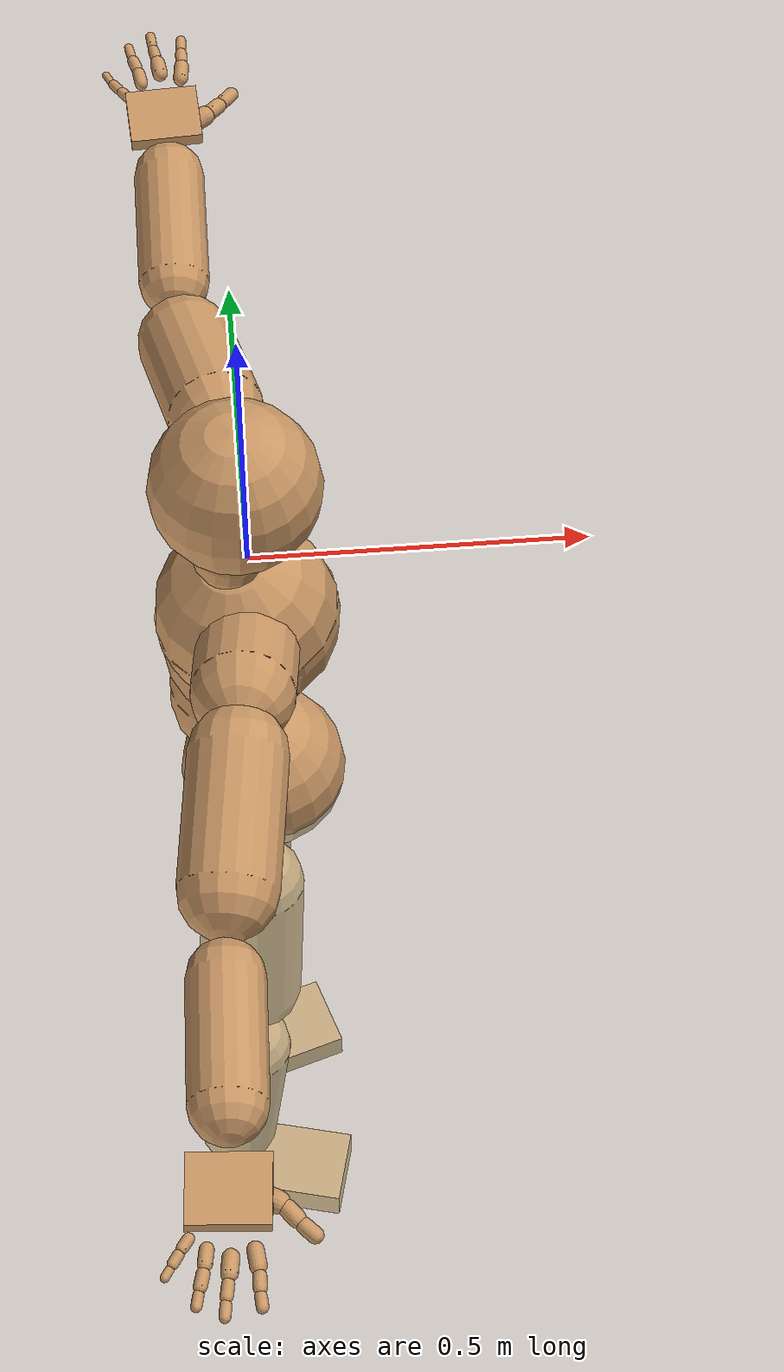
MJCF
<mujoco model="humanoid">
  <compiler coordinate="local" angle="radian"/>
  <default>
    <joint damping="0.0" armature="0.01" stiffness="0.0" limited="true"/>
    <geom conaffinity="1" condim="3" contype="7" margin="0.001" rgba="0.8 0.6 .4 1"/>
  </default>
  <asset>
    <texture type="skybox" builtin="gradient" rgb1=".4 .5 .6" rgb2="0 0 0" width="100" height="100"/>
    <texture builtin="flat" height="1278" mark="cross" markrgb="1 1 1" name="texgeom" random="0.01" rgb1="0.8 0.6 0.4" rgb2="0.8 0.6 0.4" type="cube" width="127"/>
    <texture builtin="checker" height="100" name="texplane" rgb1="0 0 0" rgb2="0.8 0.8 0.8" type="2d" width="100"/>
    <material name="MatPlane" reflectance="0.5" shininess="1" specular="1" texrepeat="60 60" texture="texplane"/>
    <material name="geom" texture="texgeom" texuniform="true"/>
  </asset>
  <worldbody>
    <light cutoff="100" diffuse="1 1 1" dir="-0 0 -1.3" directional="true" exponent="1" pos="0 0 1.3" specular=".1 .1 .1"/>
    <geom conaffinity="1" condim="3" name="floor" pos="0 0 0" rgba="0.8 0.9 0.8 1" size="100 100 .2" type="plane" material="MatPlane"/>
    <body name="Pelvis" pos="0.0016 -0.3608 0.0108">
      <freejoint name="Pelvis"/>
      <geom type="sphere" contype="1" conaffinity="1" density="500" size="0.1149" pos="0.0000 0.0000 0.0000" name="Pelvis"/>
      <body name="L_Hip" pos="-0.0244 0.062 -0.0994">
        <joint name="L_Hip_x" type="hinge" pos="0 0 0" axis="1 0 0" stiffness="800" damping="80" armature="0.02" range="-180.0000 180.0000"/>
        <joint name="L_Hip_y" type="hinge" pos="0 0 0" axis="0 1 0" stiffness="800" damping="80" armature="0.02" range="-180.0000 180.0000"/>
        <joint name="L_Hip_z" type="hinge" pos="0 0 0" axis="0 0 1" stiffness="800" damping="80" armature="0.02" range="-180.0000 180.0000"/>
        <geom type="capsule" contype="1" conaffinity="1" density="500" fromto="-0.0017 0.0144 -0.0860 -0.0067 0.0574 -0.3442" size="0.0678" name="L_Hip"/>
        <body name="L_Knee" pos="-0.0084 0.0718 -0.4302">
          <joint name="L_Knee_x" type="hinge" pos="0 0 0" axis="1 0 0" stiffness="800" damping="80" armature="0.02" range="-180.0000 180.0000"/>
          <joint name="L_Knee_y" type="hinge" pos="0 0 0" axis="0 1 0" stiffness="800" damping="80" armature="0.02" range="-180.0000 180.0000"/>
          <joint name="L_Knee_z" type="hinge" pos="0 0 0" axis="0 0 1" stiffness="800" damping="80" armature="0.02" range="-180.0000 180.0000"/>
          <geom type="capsule" contype="1" conaffinity="1" density="500" fromto="-0.0097 -0.0098 -0.0941 -0.0386 -0.0392 -0.3764" size="0.0616" name="L_Knee"/>
          <body name="L_Ankle" pos="-0.0483 -0.049 -0.4705">
            <joint name="L_Ankle_x" type="hinge" pos="0 0 0" axis="1 0 0" stiffness="800" damping="80" armature="0.02" range="-180.0000 180.0000"/>
            <joint name="L_Ankle_y" type="hinge" pos="0 0 0" axis="0 1 0" stiffness="800" damping="80" armature="0.02" range="-180.0000 180.0000"/>
            <joint name="L_Ankle_z" type="hinge" pos="0 0 0" axis="0 0 1" stiffness="800" damping="80" armature="0.02" range="-180.0000 180.0000"/>
            <geom type="box" contype="1" conaffinity="1" density="500" pos="0.0729 0.0237 -0.0337" size="0.1028 0.0573 0.0238" quat="0.9877 0.0000 0.0000 0.1564" name="L_Ankle"/>
            <body name="L_Toe" pos="0.1458 0.0474 -0.0675">
              <joint name="L_Toe_x" type="hinge" pos="0 0 0" axis="1 0 0" stiffness="500" damping="50" armature="0.02" range="-180.0000 180.0000"/>
              <joint name="L_Toe_y" type="hinge" pos="0 0 0" axis="0 1 0" stiffness="500" damping="50" armature="0.02" range="-180.0000 180.0000"/>
              <joint name="L_Toe_z" type="hinge" pos="0 0 0" axis="0 0 1" stiffness="500" damping="50" armature="0.02" range="-180.0000 180.0000"/>
              <geom type="box" contype="1" conaffinity="1" density="500" pos="0.0000 0.0000 0.0331" size="0.0011 0.0027 0.0012" quat="0.9870 0.0000 0.0000 0.1605" name="L_Toe"/>
            </body>
          </body>
        </body>
      </body>
      <body name="R_Hip" pos="-0.0154 -0.0648 -0.1109">
        <joint name="R_Hip_x" type="hinge" pos="0 0 0" axis="1 0 0" stiffness="800" damping="80" armature="0.02" range="-180.0000 180.0000"/>
        <joint name="R_Hip_y" type="hinge" pos="0 0 0" axis="0 1 0" stiffness="800" damping="80" armature="0.02" range="-180.0000 180.0000"/>
        <joint name="R_Hip_z" type="hinge" pos="0 0 0" axis="0 0 1" stiffness="800" damping="80" armature="0.02" range="-180.0000 180.0000"/>
        <geom type="capsule" contype="1" conaffinity="1" density="500" fromto="-0.0037 -0.0106 -0.0824 -0.0146 -0.0424 -0.3294" size="0.0677" name="R_Hip"/>
        <body name="R_Knee" pos="-0.0183 -0.053 -0.4118">
          <joint name="R_Knee_x" type="hinge" pos="0 0 0" axis="1 0 0" stiffness="800" damping="80" armature="0.02" range="-180.0000 180.0000"/>
          <joint name="R_Knee_y" type="hinge" pos="0 0 0" axis="0 1 0" stiffness="800" damping="80" armature="0.02" range="-180.0000 180.0000"/>
          <joint name="R_Knee_z" type="hinge" pos="0 0 0" axis="0 0 1" stiffness="800" damping="80" armature="0.02" range="-180.0000 180.0000"/>
          <geom type="capsule" contype="1" conaffinity="1" density="500" fromto="-0.0094 0.0036 -0.0971 -0.0375 0.0142 -0.3885" size="0.0613" name="R_Knee"/>
          <body name="R_Ankle" pos="-0.0469 0.0178 -0.4856">
            <joint name="R_Ankle_x" type="hinge" pos="0 0 0" axis="1 0 0" stiffness="800" damping="80" armature="0.02" range="-180.0000 180.0000"/>
            <joint name="R_Ankle_y" type="hinge" pos="0 0 0" axis="0 1 0" stiffness="800" damping="80" armature="0.02" range="-180.0000 180.0000"/>
            <joint name="R_Ankle_z" type="hinge" pos="0 0 0" axis="0 0 1" stiffness="800" damping="80" armature="0.02" range="-180.0000 180.0000"/>
            <geom type="box" contype="1" conaffinity="1" density="500" pos="0.0765 -0.0189 -0.0328" size="0.1028 0.0573 0.0284" quat="0.9927 0.0000 0.0000 -0.1210" name="R_Ankle"/>
            <body name="R_Toe" pos="0.153 -0.0379 -0.0655">
              <joint name="R_Toe_x" type="hinge" pos="0 0 0" axis="1 0 0" stiffness="500" damping="50" armature="0.02" range="-180.0000 180.0000"/>
              <joint name="R_Toe_y" type="hinge" pos="0 0 0" axis="0 1 0" stiffness="500" damping="50" armature="0.02" range="-180.0000 180.0000"/>
              <joint name="R_Toe_z" type="hinge" pos="0 0 0" axis="0 0 1" stiffness="500" damping="50" armature="0.02" range="-180.0000 180.0000"/>
              <geom type="box" contype="1" conaffinity="1" density="500" pos="0.0000 0.0000 0.0275" size="0.0011 0.0027 0.0012" quat="0.9935 0.0000 0.0000 -0.1134" name="R_Toe"/>
            </body>
          </body>
        </body>
      </body>
      <body name="Torso" pos="-0.0415 -0.0013 0.1161">
        <joint name="Torso_x" type="hinge" pos="0 0 0" axis="1 0 0" stiffness="1000" damping="100" armature="0.02" range="-180.0000 180.0000"/>
        <joint name="Torso_y" type="hinge" pos="0 0 0" axis="0 1 0" stiffness="1000" damping="100" armature="0.02" range="-180.0000 180.0000"/>
        <joint name="Torso_z" type="hinge" pos="0 0 0" axis="0 0 1" stiffness="1000" damping="100" armature="0.02" range="-180.0000 180.0000"/>
        <geom type="capsule" contype="1" conaffinity="1" density="500" fromto="0.0032 0.0081 0.0922 0.0021 0.0054 0.0615" size="0.0824" name="Torso"/>
        <body name="Spine" pos="0.0053 0.0134 0.1536">
          <joint name="Spine_x" type="hinge" pos="0 0 0" axis="1 0 0" stiffness="1000" damping="100" armature="0.02" range="-180.0000 180.0000"/>
          <joint name="Spine_y" type="hinge" pos="0 0 0" axis="0 1 0" stiffness="1000" damping="100" armature="0.02" range="-180.0000 180.0000"/>
          <joint name="Spine_z" type="hinge" pos="0 0 0" axis="0 0 1" stiffness="1000" damping="100" armature="0.02" range="-180.0000 180.0000"/>
          <geom type="capsule" contype="1" conaffinity="1" density="500" fromto="0.0191 -0.0068 0.0366 0.0127 -0.0045 0.0244" size="0.1025" name="Spine"/>
          <body name="Chest" pos="0.0318 -0.0114 0.061">
            <joint name="Chest_x" type="hinge" pos="0 0 0" axis="1 0 0" stiffness="1000" damping="100" armature="0.02" range="-180.0000 180.0000"/>
            <joint name="Chest_y" type="hinge" pos="0 0 0" axis="0 1 0" stiffness="1000" damping="100" armature="0.02" range="-180.0000 180.0000"/>
            <joint name="Chest_z" type="hinge" pos="0 0 0" axis="0 0 1" stiffness="1000" damping="100" armature="0.02" range="-180.0000 180.0000"/>
            <geom type="capsule" contype="1" conaffinity="1" density="500" fromto="-0.0079 -0.0038 0.0656 -0.0053 -0.0025 0.0438" size="0.122" name="Chest"/>
            <body name="Neck" pos="-0.0305 -0.0127 0.169">
              <joint name="Neck_x" type="hinge" pos="0 0 0" axis="1 0 0" stiffness="500" damping="50" armature="0.02" range="-180.0000 180.0000"/>
              <joint name="Neck_y" type="hinge" pos="0 0 0" axis="0 1 0" stiffness="500" damping="50" armature="0.02" range="-180.0000 180.0000"/>
              <joint name="Neck_z" type="hinge" pos="0 0 0" axis="0 0 1" stiffness="500" damping="50" armature="0.02" range="-180.0000 180.0000"/>
              <geom type="capsule" contype="1" conaffinity="1" density="500" fromto="0.0035 0.0055 0.0282 0.0141 0.0219 0.1129" size="0.0475" name="Neck"/>
              <body name="Head" pos="0.0176 0.0274 0.1412">
                <joint name="Head_x" type="hinge" pos="0 0 0" axis="1 0 0" stiffness="500" damping="50" armature="0.02" range="-180.0000 180.0000"/>
                <joint name="Head_y" type="hinge" pos="0 0 0" axis="0 1 0" stiffness="500" damping="50" armature="0.02" range="-180.0000 180.0000"/>
                <joint name="Head_z" type="hinge" pos="0 0 0" axis="0 0 1" stiffness="500" damping="50" armature="0.02" range="-180.0000 180.0000"/>
                <geom type="sphere" contype="1" conaffinity="1" density="500" size="0.1120" pos="0.0000 0.0000 0.0000" name="Head"/>
              </body>
            </body>
            <body name="L_Thorax" pos="-0.0029 0.0489 0.0793">
              <joint name="L_Thorax_x" type="hinge" pos="0 0 0" axis="1 0 0" stiffness="500" damping="50" armature="0.02" range="-180.0000 180.0000"/>
              <joint name="L_Thorax_y" type="hinge" pos="0 0 0" axis="0 1 0" stiffness="500" damping="50" armature="0.02" range="-180.0000 180.0000"/>
              <joint name="L_Thorax_z" type="hinge" pos="0 0 0" axis="0 0 1" stiffness="500" damping="50" armature="0.02" range="-180.0000 180.0000"/>
              <geom type="capsule" contype="1" conaffinity="1" density="500" fromto="-0.0032 0.0337 0.0127 -0.0129 0.1346 0.0510" size="0.0583" name="L_Thorax"/>
              <body name="L_Shoulder" pos="-0.0161 0.1683 0.0637">
                <joint name="L_Shoulder_x" type="hinge" pos="0 0 0" axis="1 0 0" stiffness="500" damping="50" armature="0.02" range="-180.0000 180.0000"/>
                <joint name="L_Shoulder_y" type="hinge" pos="0 0 0" axis="0 1 0" stiffness="500" damping="50" armature="0.02" range="-180.0000 180.0000"/>
                <joint name="L_Shoulder_z" type="hinge" pos="0 0 0" axis="0 0 1" stiffness="500" damping="50" armature="0.02" range="-180.0000 180.0000"/>
                <geom type="capsule" contype="1" conaffinity="1" density="500" fromto="-0.0115 0.0550 -0.0173 -0.0462 0.2199 -0.0692" size="0.0661" name="L_Shoulder"/>
                <body name="L_Elbow" pos="-0.0577 0.2749 -0.0865">
                  <joint name="L_Elbow_x" type="hinge" pos="0 0 0" axis="1 0 0" stiffness="500" damping="50" armature="0.02" range="-720.0000 720.0000"/>
                  <joint name="L_Elbow_y" type="hinge" pos="0 0 0" axis="0 1 0" stiffness="500" damping="50" armature="0.02" range="-720.0000 720.0000"/>
                  <joint name="L_Elbow_z" type="hinge" pos="0 0 0" axis="0 0 1" stiffness="500" damping="50" armature="0.02" range="-720.0000 720.0000"/>
                  <geom type="capsule" contype="1" conaffinity="1" density="500" fromto="0.0007 0.0592 0.0066 0.0026 0.2367 0.0266" size="0.0491" name="L_Elbow"/>
                  <body name="L_Wrist" pos="0.0033 0.2959 0.0332">
                    <joint name="L_Wrist_x" type="hinge" pos="0 0 0" axis="1 0 0" stiffness="300" damping="30" armature="0.02" range="-180.0000 180.0000"/>
                    <joint name="L_Wrist_y" type="hinge" pos="0 0 0" axis="0 1 0" stiffness="300" damping="30" armature="0.02" range="-180.0000 180.0000"/>
                    <joint name="L_Wrist_z" type="hinge" pos="0 0 0" axis="0 0 1" stiffness="300" damping="30" armature="0.02" range="-180.0000 180.0000"/>
                    <geom type="box" contype="1" conaffinity="1" density="500" pos="-0.0030 0.0508 -0.0061" size="0.047 0.0506 0.0092" quat="0.7279 0.0000 0.0000 -0.6857" name="L_Wrist"/>
                    <body name="L_Index1" pos="0.0236 0.1189 -0.0088">
                      <joint name="L_Index1_x" type="hinge" pos="0 0 0" axis="1 0 0" stiffness="100" damping="10" armature="0.02" range="-180.0000 180.0000"/>
                      <joint name="L_Index1_y" type="hinge" pos="0 0 0" axis="0 1 0" stiffness="100" damping="10" armature="0.02" range="-180.0000 180.0000"/>
                      <joint name="L_Index1_z" type="hinge" pos="0 0 0" axis="0 0 1" stiffness="100" damping="10" armature="0.02" range="-180.0000 180.0000"/>
                      <geom type="capsule" contype="1" conaffinity="1" density="500" fromto="0.0008 0.0071 0.0004 0.0030 0.0284 0.0017" size="0.0105" name="L_Index1"/>
                      <body name="L_Index2" pos="0.0038 0.0355 0.0021">
                        <joint name="L_Index2_x" type="hinge" pos="0 0 0" axis="1 0 0" stiffness="100" damping="10" armature="0.02" range="-180.0000 180.0000"/>
                        <joint name="L_Index2_y" type="hinge" pos="0 0 0" axis="0 1 0" stiffness="100" damping="10" armature="0.02" range="-180.0000 180.0000"/>
                        <joint name="L_Index2_z" type="hinge" pos="0 0 0" axis="0 0 1" stiffness="100" damping="10" armature="0.02" range="-180.0000 180.0000"/>
                        <geom type="capsule" contype="1" conaffinity="1" density="500" fromto="-0.0001 0.0050 -0.0006 -0.0003 0.0200 -0.0023" size="0.0085" name="L_Index2"/>
                        <body name="L_Index3" pos="-0.0004 0.025 -0.0029">
                          <joint name="L_Index3_x" type="hinge" pos="0 0 0" axis="1 0 0" stiffness="100" damping="10" armature="0.02" range="-180.0000 180.0000"/>
                          <joint name="L_Index3_y" type="hinge" pos="0 0 0" axis="0 1 0" stiffness="100" damping="10" armature="0.02" range="-180.0000 180.0000"/>
                          <joint name="L_Index3_z" type="hinge" pos="0 0 0" axis="0 0 1" stiffness="100" damping="10" armature="0.02" range="-180.0000 180.0000"/>
                          <geom type="capsule" contype="1" conaffinity="1" density="500" fromto="0.0003 0.0054 -0.0002 0.0013 0.0216 -0.0007" size="0.0073" name="L_Index3"/>
                        </body>
                      </body>
                    </body>
                    <body name="L_Middle1" pos="-0.0037 0.1278 -0.0056">
                      <joint name="L_Middle1_x" type="hinge" pos="0 0 0" axis="1 0 0" stiffness="100" damping="10" armature="0.02" range="-180.0000 180.0000"/>
                      <joint name="L_Middle1_y" type="hinge" pos="0 0 0" axis="0 1 0" stiffness="100" damping="10" armature="0.02" range="-180.0000 180.0000"/>
                      <joint name="L_Middle1_z" type="hinge" pos="0 0 0" axis="0 0 1" stiffness="100" damping="10" armature="0.02" range="-180.0000 180.0000"/>
                      <geom type="capsule" contype="1" conaffinity="1" density="500" fromto="-0.0010 0.0068 0.0001 -0.0038 0.0273 0.0006" size="0.0107" name="L_Middle1"/>
                      <body name="L_Middle2" pos="-0.0048 0.0341 0.0007">
                        <joint name="L_Middle2_x" type="hinge" pos="0 0 0" axis="1 0 0" stiffness="100" damping="10" armature="0.02" range="-180.0000 180.0000"/>
                        <joint name="L_Middle2_y" type="hinge" pos="0 0 0" axis="0 1 0" stiffness="100" damping="10" armature="0.02" range="-180.0000 180.0000"/>
                        <joint name="L_Middle2_z" type="hinge" pos="0 0 0" axis="0 0 1" stiffness="100" damping="10" armature="0.02" range="-180.0000 180.0000"/>
                        <geom type="capsule" contype="1" conaffinity="1" density="500" fromto="-0.0010 0.0052 -0.0006 -0.0038 0.0209 -0.0023" size="0.0079" name="L_Middle2"/>
                        <body name="L_Middle3" pos="-0.0048 0.0261 -0.0029">
                          <joint name="L_Middle3_x" type="hinge" pos="0 0 0" axis="1 0 0" stiffness="100" damping="10" armature="0.02" range="-180.0000 180.0000"/>
                          <joint name="L_Middle3_y" type="hinge" pos="0 0 0" axis="0 1 0" stiffness="100" damping="10" armature="0.02" range="-180.0000 180.0000"/>
                          <joint name="L_Middle3_z" type="hinge" pos="0 0 0" axis="0 0 1" stiffness="100" damping="10" armature="0.02" range="-180.0000 180.0000"/>
                          <geom type="capsule" contype="1" conaffinity="1" density="500" fromto="-0.0006 0.0056 -0.0002 -0.0022 0.0225 -0.0007" size="0.007" name="L_Middle3"/>
                        </body>
                      </body>
                    </body>
                    <body name="L_Pinky1" pos="-0.0505 0.0992 -0.0157">
                      <joint name="L_Pinky1_x" type="hinge" pos="0 0 0" axis="1 0 0" stiffness="100" damping="10" armature="0.02" range="-180.0000 180.0000"/>
                      <joint name="L_Pinky1_y" type="hinge" pos="0 0 0" axis="0 1 0" stiffness="100" damping="10" armature="0.02" range="-180.0000 180.0000"/>
                      <joint name="L_Pinky1_z" type="hinge" pos="0 0 0" axis="0 0 1" stiffness="100" damping="10" armature="0.02" range="-180.0000 180.0000"/>
                      <geom type="capsule" contype="1" conaffinity="1" density="500" fromto="-0.0026 0.0037 -0.0004 -0.0103 0.0146 -0.0015" size="0.0076" name="L_Pinky1"/>
                      <body name="L_Pinky2" pos="-0.0128 0.0183 -0.0019">
                        <joint name="L_Pinky2_x" type="hinge" pos="0 0 0" axis="1 0 0" stiffness="100" damping="10" armature="0.02" range="-180.0000 180.0000"/>
                        <joint name="L_Pinky2_y" type="hinge" pos="0 0 0" axis="0 1 0" stiffness="100" damping="10" armature="0.02" range="-180.0000 180.0000"/>
                        <joint name="L_Pinky2_z" type="hinge" pos="0 0 0" axis="0 0 1" stiffness="100" damping="10" armature="0.02" range="-180.0000 180.0000"/>
                        <geom type="capsule" contype="1" conaffinity="1" density="500" fromto="-0.0024 0.0036 -0.0005 -0.0095 0.0142 -0.0019" size="0.0072" name="L_Pinky2"/>
                        <body name="L_Pinky3" pos="-0.0118 0.0178 -0.0024">
                          <joint name="L_Pinky3_x" type="hinge" pos="0 0 0" axis="1 0 0" stiffness="100" damping="10" armature="0.02" range="-180.0000 180.0000"/>
                          <joint name="L_Pinky3_y" type="hinge" pos="0 0 0" axis="0 1 0" stiffness="100" damping="10" armature="0.02" range="-180.0000 180.0000"/>
                          <joint name="L_Pinky3_z" type="hinge" pos="0 0 0" axis="0 0 1" stiffness="100" damping="10" armature="0.02" range="-180.0000 180.0000"/>
                          <geom type="capsule" contype="1" conaffinity="1" density="500" fromto="-0.0020 0.0040 -0.0001 -0.0079 0.0158 -0.0003" size="0.0054" name="L_Pinky3"/>
                        </body>
                      </body>
                    </body>
                    <body name="L_Ring1" pos="-0.0312 0.1145 -0.0092">
                      <joint name="L_Ring1_x" type="hinge" pos="0 0 0" axis="1 0 0" stiffness="100" damping="10" armature="0.02" range="-180.0000 180.0000"/>
                      <joint name="L_Ring1_y" type="hinge" pos="0 0 0" axis="0 1 0" stiffness="100" damping="10" armature="0.02" range="-180.0000 180.0000"/>
                      <joint name="L_Ring1_z" type="hinge" pos="0 0 0" axis="0 0 1" stiffness="100" damping="10" armature="0.02" range="-180.0000 180.0000"/>
                      <geom type="capsule" contype="1" conaffinity="1" density="500" fromto="-0.0011 0.0064 0.0001 -0.0043 0.0254 0.0006" size="0.0091" name="L_Ring1"/>
                      <body name="L_Ring2" pos="-0.0053 0.0318 0.0007">
                        <joint name="L_Ring2_x" type="hinge" pos="0 0 0" axis="1 0 0" stiffness="100" damping="10" armature="0.02" range="-180.0000 180.0000"/>
                        <joint name="L_Ring2_y" type="hinge" pos="0 0 0" axis="0 1 0" stiffness="100" damping="10" armature="0.02" range="-180.0000 180.0000"/>
                        <joint name="L_Ring2_z" type="hinge" pos="0 0 0" axis="0 0 1" stiffness="100" damping="10" armature="0.02" range="-180.0000 180.0000"/>
                        <geom type="capsule" contype="1" conaffinity="1" density="500" fromto="-0.0015 0.0051 -0.0005 -0.0058 0.0204 -0.0021" size="0.0084" name="L_Ring2"/>
                        <body name="L_Ring3" pos="-0.0073 0.0255 -0.0026">
                          <joint name="L_Ring3_x" type="hinge" pos="0 0 0" axis="1 0 0" stiffness="100" damping="10" armature="0.02" range="-180.0000 180.0000"/>
                          <joint name="L_Ring3_y" type="hinge" pos="0 0 0" axis="0 1 0" stiffness="100" damping="10" armature="0.02" range="-180.0000 180.0000"/>
                          <joint name="L_Ring3_z" type="hinge" pos="0 0 0" axis="0 0 1" stiffness="100" damping="10" armature="0.02" range="-180.0000 180.0000"/>
                          <geom type="capsule" contype="1" conaffinity="1" density="500" fromto="-0.0011 0.0055 -0.0001 -0.0042 0.0220 -0.0005" size="0.0065" name="L_Ring3"/>
                        </body>
                      </body>
                    </body>
                    <body name="L_Thumb1" pos="0.0314 0.0474 -0.0221">
                      <joint name="L_Thumb1_x" type="hinge" pos="0 0 0" axis="1 0 0" stiffness="100" damping="10" armature="0.02" range="-180.0000 180.0000"/>
                      <joint name="L_Thumb1_y" type="hinge" pos="0 0 0" axis="0 1 0" stiffness="100" damping="10" armature="0.02" range="-180.0000 180.0000"/>
                      <joint name="L_Thumb1_z" type="hinge" pos="0 0 0" axis="0 0 1" stiffness="100" damping="10" armature="0.02" range="-180.0000 180.0000"/>
                      <geom type="capsule" contype="1" conaffinity="1" density="500" fromto="0.0060 0.0037 0.0005 0.0238 0.0148 0.0019" size="0.0144" name="L_Thumb1"/>
                      <body name="L_Thumb2" pos="0.0298 0.0185 0.0024">
                        <joint name="L_Thumb2_x" type="hinge" pos="0 0 0" axis="1 0 0" stiffness="100" damping="10" armature="0.02" range="-180.0000 180.0000"/>
                        <joint name="L_Thumb2_y" type="hinge" pos="0 0 0" axis="0 1 0" stiffness="100" damping="10" armature="0.02" range="-180.0000 180.0000"/>
                        <joint name="L_Thumb2_z" type="hinge" pos="0 0 0" axis="0 0 1" stiffness="100" damping="10" armature="0.02" range="-180.0000 180.0000"/>
                        <geom type="capsule" contype="1" conaffinity="1" density="500" fromto="0.0037 0.0044 -0.0011 0.0147 0.0177 -0.0045" size="0.0113" name="L_Thumb2"/>
                        <body name="L_Thumb3" pos="0.0183 0.0221 -0.0056">
                          <joint name="L_Thumb3_x" type="hinge" pos="0 0 0" axis="1 0 0" stiffness="100" damping="10" armature="0.02" range="-180.0000 180.0000"/>
                          <joint name="L_Thumb3_y" type="hinge" pos="0 0 0" axis="0 1 0" stiffness="100" damping="10" armature="0.02" range="-180.0000 180.0000"/>
                          <joint name="L_Thumb3_z" type="hinge" pos="0 0 0" axis="0 0 1" stiffness="100" damping="10" armature="0.02" range="-180.0000 180.0000"/>
                          <geom type="capsule" contype="1" conaffinity="1" density="500" fromto="0.0041 0.0048 -0.0007 0.0163 0.0193 -0.0029" size="0.0102" name="L_Thumb3"/>
                        </body>
                      </body>
                    </body>
                  </body>
                </body>
              </body>
            </body>
            <body name="R_Thorax" pos="-0.0063 -0.0553 0.0799">
              <joint name="R_Thorax_x" type="hinge" pos="0 0 0" axis="1 0 0" stiffness="500" damping="50" armature="0.02" range="-180.0000 180.0000"/>
              <joint name="R_Thorax_y" type="hinge" pos="0 0 0" axis="0 1 0" stiffness="500" damping="50" armature="0.02" range="-180.0000 180.0000"/>
              <joint name="R_Thorax_z" type="hinge" pos="0 0 0" axis="0 0 1" stiffness="500" damping="50" armature="0.02" range="-180.0000 180.0000"/>
              <geom type="capsule" contype="1" conaffinity="1" density="500" fromto="-0.0034 -0.0310 0.0123 -0.0135 -0.1240 0.0494" size="0.0682" name="R_Thorax"/>
              <body name="R_Shoulder" pos="-0.0169 -0.155 0.0617">
                <joint name="R_Shoulder_x" type="hinge" pos="0 0 0" axis="1 0 0" stiffness="500" damping="50" armature="0.02" range="-180.0000 180.0000"/>
                <joint name="R_Shoulder_y" type="hinge" pos="0 0 0" axis="0 1 0" stiffness="500" damping="50" armature="0.02" range="-180.0000 180.0000"/>
                <joint name="R_Shoulder_z" type="hinge" pos="0 0 0" axis="0 0 1" stiffness="500" damping="50" armature="0.02" range="-180.0000 180.0000"/>
                <geom type="capsule" contype="1" conaffinity="1" density="500" fromto="-0.0078 -0.0592 -0.0100 -0.0311 -0.2366 -0.0400" size="0.0653" name="R_Shoulder"/>
                <body name="R_Elbow" pos="-0.0389 -0.2958 -0.05">
                  <joint name="R_Elbow_x" type="hinge" pos="0 0 0" axis="1 0 0" stiffness="500" damping="50" armature="0.02" range="-720.0000 720.0000"/>
                  <joint name="R_Elbow_y" type="hinge" pos="0 0 0" axis="0 1 0" stiffness="500" damping="50" armature="0.02" range="-720.0000 720.0000"/>
                  <joint name="R_Elbow_z" type="hinge" pos="0 0 0" axis="0 0 1" stiffness="500" damping="50" armature="0.02" range="-720.0000 720.0000"/>
                  <geom type="capsule" contype="1" conaffinity="1" density="500" fromto="-0.0021 -0.0575 0.0005 -0.0084 -0.2298 0.0018" size="0.0503" name="R_Elbow"/>
                  <body name="R_Wrist" pos="-0.0105 -0.2873 0.0023">
                    <joint name="R_Wrist_x" type="hinge" pos="0 0 0" axis="1 0 0" stiffness="300" damping="30" armature="0.02" range="-180.0000 180.0000"/>
                    <joint name="R_Wrist_y" type="hinge" pos="0 0 0" axis="0 1 0" stiffness="300" damping="30" armature="0.02" range="-180.0000 180.0000"/>
                    <joint name="R_Wrist_z" type="hinge" pos="0 0 0" axis="0 0 1" stiffness="300" damping="30" armature="0.02" range="-180.0000 180.0000"/>
                    <geom type="box" contype="1" conaffinity="1" density="500" pos="-0.0035 -0.0504 -0.0081" size="0.047 0.0521 0.0094" quat="0.7312 0.0000 0.0000 0.6822" name="R_Wrist"/>
                    <body name="R_Index1" pos="0.0227 -0.1181 -0.0128">
                      <joint name="R_Index1_x" type="hinge" pos="0 0 0" axis="1 0 0" stiffness="100" damping="10" armature="0.02" range="-180.0000 180.0000"/>
                      <joint name="R_Index1_y" type="hinge" pos="0 0 0" axis="0 1 0" stiffness="100" damping="10" armature="0.02" range="-180.0000 180.0000"/>
                      <joint name="R_Index1_z" type="hinge" pos="0 0 0" axis="0 0 1" stiffness="100" damping="10" armature="0.02" range="-180.0000 180.0000"/>
                      <geom type="capsule" contype="1" conaffinity="1" density="500" fromto="0.0008 -0.0071 0.0004 0.0030 -0.0284 0.0017" size="0.0106" name="R_Index1"/>
                      <body name="R_Index2" pos="0.0038 -0.0355 0.0021">
                        <joint name="R_Index2_x" type="hinge" pos="0 0 0" axis="1 0 0" stiffness="100" damping="10" armature="0.02" range="-180.0000 180.0000"/>
                        <joint name="R_Index2_y" type="hinge" pos="0 0 0" axis="0 1 0" stiffness="100" damping="10" armature="0.02" range="-180.0000 180.0000"/>
                        <joint name="R_Index2_z" type="hinge" pos="0 0 0" axis="0 0 1" stiffness="100" damping="10" armature="0.02" range="-180.0000 180.0000"/>
                        <geom type="capsule" contype="1" conaffinity="1" density="500" fromto="-0.0001 -0.0050 -0.0006 -0.0003 -0.0200 -0.0023" size="0.0085" name="R_Index2"/>
                        <body name="R_Index3" pos="-0.0004 -0.025 -0.0029">
                          <joint name="R_Index3_x" type="hinge" pos="0 0 0" axis="1 0 0" stiffness="100" damping="10" armature="0.02" range="-180.0000 180.0000"/>
                          <joint name="R_Index3_y" type="hinge" pos="0 0 0" axis="0 1 0" stiffness="100" damping="10" armature="0.02" range="-180.0000 180.0000"/>
                          <joint name="R_Index3_z" type="hinge" pos="0 0 0" axis="0 0 1" stiffness="100" damping="10" armature="0.02" range="-180.0000 180.0000"/>
                          <geom type="capsule" contype="1" conaffinity="1" density="500" fromto="0.0003 -0.0046 -0.0002 0.0013 -0.0184 -0.0007" size="0.0076" name="R_Index3"/>
                        </body>
                      </body>
                    </body>
                    <body name="R_Middle1" pos="-0.0046 -0.127 -0.0096">
                      <joint name="R_Middle1_x" type="hinge" pos="0 0 0" axis="1 0 0" stiffness="100" damping="10" armature="0.02" range="-180.0000 180.0000"/>
                      <joint name="R_Middle1_y" type="hinge" pos="0 0 0" axis="0 1 0" stiffness="100" damping="10" armature="0.02" range="-180.0000 180.0000"/>
                      <joint name="R_Middle1_z" type="hinge" pos="0 0 0" axis="0 0 1" stiffness="100" damping="10" armature="0.02" range="-180.0000 180.0000"/>
                      <geom type="capsule" contype="1" conaffinity="1" density="500" fromto="-0.0010 -0.0068 0.0001 -0.0038 -0.0273 0.0006" size="0.0107" name="R_Middle1"/>
                      <body name="R_Middle2" pos="-0.0048 -0.0341 0.0007">
                        <joint name="R_Middle2_x" type="hinge" pos="0 0 0" axis="1 0 0" stiffness="100" damping="10" armature="0.02" range="-180.0000 180.0000"/>
                        <joint name="R_Middle2_y" type="hinge" pos="0 0 0" axis="0 1 0" stiffness="100" damping="10" armature="0.02" range="-180.0000 180.0000"/>
                        <joint name="R_Middle2_z" type="hinge" pos="0 0 0" axis="0 0 1" stiffness="100" damping="10" armature="0.02" range="-180.0000 180.0000"/>
                        <geom type="capsule" contype="1" conaffinity="1" density="500" fromto="-0.0010 -0.0052 -0.0006 -0.0038 -0.0209 -0.0023" size="0.0079" name="R_Middle2"/>
                        <body name="R_Middle3" pos="-0.0048 -0.0261 -0.0029">
                          <joint name="R_Middle3_x" type="hinge" pos="0 0 0" axis="1 0 0" stiffness="100" damping="10" armature="0.02" range="-180.0000 180.0000"/>
                          <joint name="R_Middle3_y" type="hinge" pos="0 0 0" axis="0 1 0" stiffness="100" damping="10" armature="0.02" range="-180.0000 180.0000"/>
                          <joint name="R_Middle3_z" type="hinge" pos="0 0 0" axis="0 0 1" stiffness="100" damping="10" armature="0.02" range="-180.0000 180.0000"/>
                          <geom type="capsule" contype="1" conaffinity="1" density="500" fromto="-0.0006 -0.0048 -0.0002 -0.0022 -0.0193 -0.0007" size="0.0072" name="R_Middle3"/>
                        </body>
                      </body>
                    </body>
                    <body name="R_Pinky1" pos="-0.0514 -0.0984 -0.0197">
                      <joint name="R_Pinky1_x" type="hinge" pos="0 0 0" axis="1 0 0" stiffness="100" damping="10" armature="0.02" range="-180.0000 180.0000"/>
                      <joint name="R_Pinky1_y" type="hinge" pos="0 0 0" axis="0 1 0" stiffness="100" damping="10" armature="0.02" range="-180.0000 180.0000"/>
                      <joint name="R_Pinky1_z" type="hinge" pos="0 0 0" axis="0 0 1" stiffness="100" damping="10" armature="0.02" range="-180.0000 180.0000"/>
                      <geom type="capsule" contype="1" conaffinity="1" density="500" fromto="-0.0026 -0.0037 -0.0004 -0.0103 -0.0146 -0.0015" size="0.0076" name="R_Pinky1"/>
                      <body name="R_Pinky2" pos="-0.0128 -0.0183 -0.0019">
                        <joint name="R_Pinky2_x" type="hinge" pos="0 0 0" axis="1 0 0" stiffness="100" damping="10" armature="0.02" range="-180.0000 180.0000"/>
                        <joint name="R_Pinky2_y" type="hinge" pos="0 0 0" axis="0 1 0" stiffness="100" damping="10" armature="0.02" range="-180.0000 180.0000"/>
                        <joint name="R_Pinky2_z" type="hinge" pos="0 0 0" axis="0 0 1" stiffness="100" damping="10" armature="0.02" range="-180.0000 180.0000"/>
                        <geom type="capsule" contype="1" conaffinity="1" density="500" fromto="-0.0024 -0.0036 -0.0005 -0.0095 -0.0142 -0.0019" size="0.0072" name="R_Pinky2"/>
                        <body name="R_Pinky3" pos="-0.0118 -0.0178 -0.0024">
                          <joint name="R_Pinky3_x" type="hinge" pos="0 0 0" axis="1 0 0" stiffness="100" damping="10" armature="0.02" range="-180.0000 180.0000"/>
                          <joint name="R_Pinky3_y" type="hinge" pos="0 0 0" axis="0 1 0" stiffness="100" damping="10" armature="0.02" range="-180.0000 180.0000"/>
                          <joint name="R_Pinky3_z" type="hinge" pos="0 0 0" axis="0 0 1" stiffness="100" damping="10" armature="0.02" range="-180.0000 180.0000"/>
                          <geom type="capsule" contype="1" conaffinity="1" density="500" fromto="-0.0020 -0.0032 -0.0001 -0.0079 -0.0126 -0.0003" size="0.0057" name="R_Pinky3"/>
                        </body>
                      </body>
                    </body>
                    <body name="R_Ring1" pos="-0.0321 -0.1137 -0.0132">
                      <joint name="R_Ring1_x" type="hinge" pos="0 0 0" axis="1 0 0" stiffness="100" damping="10" armature="0.02" range="-180.0000 180.0000"/>
                      <joint name="R_Ring1_y" type="hinge" pos="0 0 0" axis="0 1 0" stiffness="100" damping="10" armature="0.02" range="-180.0000 180.0000"/>
                      <joint name="R_Ring1_z" type="hinge" pos="0 0 0" axis="0 0 1" stiffness="100" damping="10" armature="0.02" range="-180.0000 180.0000"/>
                      <geom type="capsule" contype="1" conaffinity="1" density="500" fromto="-0.0011 -0.0064 0.0001 -0.0043 -0.0254 0.0006" size="0.0091" name="R_Ring1"/>
                      <body name="R_Ring2" pos="-0.0053 -0.0318 0.0007">
                        <joint name="R_Ring2_x" type="hinge" pos="0 0 0" axis="1 0 0" stiffness="100" damping="10" armature="0.02" range="-180.0000 180.0000"/>
                        <joint name="R_Ring2_y" type="hinge" pos="0 0 0" axis="0 1 0" stiffness="100" damping="10" armature="0.02" range="-180.0000 180.0000"/>
                        <joint name="R_Ring2_z" type="hinge" pos="0 0 0" axis="0 0 1" stiffness="100" damping="10" armature="0.02" range="-180.0000 180.0000"/>
                        <geom type="capsule" contype="1" conaffinity="1" density="500" fromto="-0.0015 -0.0051 -0.0005 -0.0058 -0.0204 -0.0021" size="0.0084" name="R_Ring2"/>
                        <body name="R_Ring3" pos="-0.0073 -0.0255 -0.0026">
                          <joint name="R_Ring3_x" type="hinge" pos="0 0 0" axis="1 0 0" stiffness="100" damping="10" armature="0.02" range="-180.0000 180.0000"/>
                          <joint name="R_Ring3_y" type="hinge" pos="0 0 0" axis="0 1 0" stiffness="100" damping="10" armature="0.02" range="-180.0000 180.0000"/>
                          <joint name="R_Ring3_z" type="hinge" pos="0 0 0" axis="0 0 1" stiffness="100" damping="10" armature="0.02" range="-180.0000 180.0000"/>
                          <geom type="capsule" contype="1" conaffinity="1" density="500" fromto="-0.0011 -0.0047 -0.0001 -0.0042 -0.0188 -0.0005" size="0.0068" name="R_Ring3"/>
                        </body>
                      </body>
                    </body>
                    <body name="R_Thumb1" pos="0.0305 -0.0466 -0.0261">
                      <joint name="R_Thumb1_x" type="hinge" pos="0 0 0" axis="1 0 0" stiffness="100" damping="10" armature="0.02" range="-180.0000 180.0000"/>
                      <joint name="R_Thumb1_y" type="hinge" pos="0 0 0" axis="0 1 0" stiffness="100" damping="10" armature="0.02" range="-180.0000 180.0000"/>
                      <joint name="R_Thumb1_z" type="hinge" pos="0 0 0" axis="0 0 1" stiffness="100" damping="10" armature="0.02" range="-180.0000 180.0000"/>
                      <geom type="capsule" contype="1" conaffinity="1" density="500" fromto="0.0060 -0.0037 0.0005 0.0238 -0.0148 0.0019" size="0.0144" name="R_Thumb1"/>
                      <body name="R_Thumb2" pos="0.0298 -0.0185 0.0024">
                        <joint name="R_Thumb2_x" type="hinge" pos="0 0 0" axis="1 0 0" stiffness="100" damping="10" armature="0.02" range="-180.0000 180.0000"/>
                        <joint name="R_Thumb2_y" type="hinge" pos="0 0 0" axis="0 1 0" stiffness="100" damping="10" armature="0.02" range="-180.0000 180.0000"/>
                        <joint name="R_Thumb2_z" type="hinge" pos="0 0 0" axis="0 0 1" stiffness="100" damping="10" armature="0.02" range="-180.0000 180.0000"/>
                        <geom type="capsule" contype="1" conaffinity="1" density="500" fromto="0.0037 -0.0044 -0.0011 0.0147 -0.0177 -0.0045" size="0.0113" name="R_Thumb2"/>
                        <body name="R_Thumb3" pos="0.0183 -0.0221 -0.0056">
                          <joint name="R_Thumb3_x" type="hinge" pos="0 0 0" axis="1 0 0" stiffness="100" damping="10" armature="0.02" range="-180.0000 180.0000"/>
                          <joint name="R_Thumb3_y" type="hinge" pos="0 0 0" axis="0 1 0" stiffness="100" damping="10" armature="0.02" range="-180.0000 180.0000"/>
                          <joint name="R_Thumb3_z" type="hinge" pos="0 0 0" axis="0 0 1" stiffness="100" damping="10" armature="0.02" range="-180.0000 180.0000"/>
                          <geom type="capsule" contype="1" conaffinity="1" density="500" fromto="0.0041 -0.0040 -0.0007 0.0163 -0.0161 -0.0029" size="0.0104" name="R_Thumb3"/>
                        </body>
                      </body>
                    </body>
                  </body>
                </body>
              </body>
            </body>
          </body>
        </body>
      </body>
    </body>
  </worldbody>
  <actuator>
    <motor name="L_Hip_x" joint="L_Hip_x" gear="500"/>
    <motor name="L_Hip_y" joint="L_Hip_y" gear="500"/>
    <motor name="L_Hip_z" joint="L_Hip_z" gear="500"/>
    <motor name="L_Knee_x" joint="L_Knee_x" gear="500"/>
    <motor name="L_Knee_y" joint="L_Knee_y" gear="500"/>
    <motor name="L_Knee_z" joint="L_Knee_z" gear="500"/>
    <motor name="L_Ankle_x" joint="L_Ankle_x" gear="500"/>
    <motor name="L_Ankle_y" joint="L_Ankle_y" gear="500"/>
    <motor name="L_Ankle_z" joint="L_Ankle_z" gear="500"/>
    <motor name="L_Toe_x" joint="L_Toe_x" gear="500"/>
    <motor name="L_Toe_y" joint="L_Toe_y" gear="500"/>
    <motor name="L_Toe_z" joint="L_Toe_z" gear="500"/>
    <motor name="R_Hip_x" joint="R_Hip_x" gear="500"/>
    <motor name="R_Hip_y" joint="R_Hip_y" gear="500"/>
    <motor name="R_Hip_z" joint="R_Hip_z" gear="500"/>
    <motor name="R_Knee_x" joint="R_Knee_x" gear="500"/>
    <motor name="R_Knee_y" joint="R_Knee_y" gear="500"/>
    <motor name="R_Knee_z" joint="R_Knee_z" gear="500"/>
    <motor name="R_Ankle_x" joint="R_Ankle_x" gear="500"/>
    <motor name="R_Ankle_y" joint="R_Ankle_y" gear="500"/>
    <motor name="R_Ankle_z" joint="R_Ankle_z" gear="500"/>
    <motor name="R_Toe_x" joint="R_Toe_x" gear="500"/>
    <motor name="R_Toe_y" joint="R_Toe_y" gear="500"/>
    <motor name="R_Toe_z" joint="R_Toe_z" gear="500"/>
    <motor name="Torso_x" joint="Torso_x" gear="500"/>
    <motor name="Torso_y" joint="Torso_y" gear="500"/>
    <motor name="Torso_z" joint="Torso_z" gear="500"/>
    <motor name="Spine_x" joint="Spine_x" gear="500"/>
    <motor name="Spine_y" joint="Spine_y" gear="500"/>
    <motor name="Spine_z" joint="Spine_z" gear="500"/>
    <motor name="Chest_x" joint="Chest_x" gear="500"/>
    <motor name="Chest_y" joint="Chest_y" gear="500"/>
    <motor name="Chest_z" joint="Chest_z" gear="500"/>
    <motor name="Neck_x" joint="Neck_x" gear="500"/>
    <motor name="Neck_y" joint="Neck_y" gear="500"/>
    <motor name="Neck_z" joint="Neck_z" gear="500"/>
    <motor name="Head_x" joint="Head_x" gear="500"/>
    <motor name="Head_y" joint="Head_y" gear="500"/>
    <motor name="Head_z" joint="Head_z" gear="500"/>
    <motor name="L_Thorax_x" joint="L_Thorax_x" gear="500"/>
    <motor name="L_Thorax_y" joint="L_Thorax_y" gear="500"/>
    <motor name="L_Thorax_z" joint="L_Thorax_z" gear="500"/>
    <motor name="L_Shoulder_x" joint="L_Shoulder_x" gear="500"/>
    <motor name="L_Shoulder_y" joint="L_Shoulder_y" gear="500"/>
    <motor name="L_Shoulder_z" joint="L_Shoulder_z" gear="500"/>
    <motor name="L_Elbow_x" joint="L_Elbow_x" gear="500"/>
    <motor name="L_Elbow_y" joint="L_Elbow_y" gear="500"/>
    <motor name="L_Elbow_z" joint="L_Elbow_z" gear="500"/>
    <motor name="L_Wrist_x" joint="L_Wrist_x" gear="500"/>
    <motor name="L_Wrist_y" joint="L_Wrist_y" gear="500"/>
    <motor name="L_Wrist_z" joint="L_Wrist_z" gear="500"/>
    <motor name="L_Index1_x" joint="L_Index1_x" gear="500"/>
    <motor name="L_Index1_y" joint="L_Index1_y" gear="500"/>
    <motor name="L_Index1_z" joint="L_Index1_z" gear="500"/>
    <motor name="L_Index2_x" joint="L_Index2_x" gear="500"/>
    <motor name="L_Index2_y" joint="L_Index2_y" gear="500"/>
    <motor name="L_Index2_z" joint="L_Index2_z" gear="500"/>
    <motor name="L_Index3_x" joint="L_Index3_x" gear="500"/>
    <motor name="L_Index3_y" joint="L_Index3_y" gear="500"/>
    <motor name="L_Index3_z" joint="L_Index3_z" gear="500"/>
    <motor name="L_Middle1_x" joint="L_Middle1_x" gear="500"/>
    <motor name="L_Middle1_y" joint="L_Middle1_y" gear="500"/>
    <motor name="L_Middle1_z" joint="L_Middle1_z" gear="500"/>
    <motor name="L_Middle2_x" joint="L_Middle2_x" gear="500"/>
    <motor name="L_Middle2_y" joint="L_Middle2_y" gear="500"/>
    <motor name="L_Middle2_z" joint="L_Middle2_z" gear="500"/>
    <motor name="L_Middle3_x" joint="L_Middle3_x" gear="500"/>
    <motor name="L_Middle3_y" joint="L_Middle3_y" gear="500"/>
    <motor name="L_Middle3_z" joint="L_Middle3_z" gear="500"/>
    <motor name="L_Pinky1_x" joint="L_Pinky1_x" gear="500"/>
    <motor name="L_Pinky1_y" joint="L_Pinky1_y" gear="500"/>
    <motor name="L_Pinky1_z" joint="L_Pinky1_z" gear="500"/>
    <motor name="L_Pinky2_x" joint="L_Pinky2_x" gear="500"/>
    <motor name="L_Pinky2_y" joint="L_Pinky2_y" gear="500"/>
    <motor name="L_Pinky2_z" joint="L_Pinky2_z" gear="500"/>
    <motor name="L_Pinky3_x" joint="L_Pinky3_x" gear="500"/>
    <motor name="L_Pinky3_y" joint="L_Pinky3_y" gear="500"/>
    <motor name="L_Pinky3_z" joint="L_Pinky3_z" gear="500"/>
    <motor name="L_Ring1_x" joint="L_Ring1_x" gear="500"/>
    <motor name="L_Ring1_y" joint="L_Ring1_y" gear="500"/>
    <motor name="L_Ring1_z" joint="L_Ring1_z" gear="500"/>
    <motor name="L_Ring2_x" joint="L_Ring2_x" gear="500"/>
    <motor name="L_Ring2_y" joint="L_Ring2_y" gear="500"/>
    <motor name="L_Ring2_z" joint="L_Ring2_z" gear="500"/>
    <motor name="L_Ring3_x" joint="L_Ring3_x" gear="500"/>
    <motor name="L_Ring3_y" joint="L_Ring3_y" gear="500"/>
    <motor name="L_Ring3_z" joint="L_Ring3_z" gear="500"/>
    <motor name="L_Thumb1_x" joint="L_Thumb1_x" gear="500"/>
    <motor name="L_Thumb1_y" joint="L_Thumb1_y" gear="500"/>
    <motor name="L_Thumb1_z" joint="L_Thumb1_z" gear="500"/>
    <motor name="L_Thumb2_x" joint="L_Thumb2_x" gear="500"/>
    <motor name="L_Thumb2_y" joint="L_Thumb2_y" gear="500"/>
    <motor name="L_Thumb2_z" joint="L_Thumb2_z" gear="500"/>
    <motor name="L_Thumb3_x" joint="L_Thumb3_x" gear="500"/>
    <motor name="L_Thumb3_y" joint="L_Thumb3_y" gear="500"/>
    <motor name="L_Thumb3_z" joint="L_Thumb3_z" gear="500"/>
    <motor name="R_Thorax_x" joint="R_Thorax_x" gear="500"/>
    <motor name="R_Thorax_y" joint="R_Thorax_y" gear="500"/>
    <motor name="R_Thorax_z" joint="R_Thorax_z" gear="500"/>
    <motor name="R_Shoulder_x" joint="R_Shoulder_x" gear="500"/>
    <motor name="R_Shoulder_y" joint="R_Shoulder_y" gear="500"/>
    <motor name="R_Shoulder_z" joint="R_Shoulder_z" gear="500"/>
    <motor name="R_Elbow_x" joint="R_Elbow_x" gear="500"/>
    <motor name="R_Elbow_y" joint="R_Elbow_y" gear="500"/>
    <motor name="R_Elbow_z" joint="R_Elbow_z" gear="500"/>
    <motor name="R_Wrist_x" joint="R_Wrist_x" gear="500"/>
    <motor name="R_Wrist_y" joint="R_Wrist_y" gear="500"/>
    <motor name="R_Wrist_z" joint="R_Wrist_z" gear="500"/>
    <motor name="R_Index1_x" joint="R_Index1_x" gear="500"/>
    <motor name="R_Index1_y" joint="R_Index1_y" gear="500"/>
    <motor name="R_Index1_z" joint="R_Index1_z" gear="500"/>
    <motor name="R_Index2_x" joint="R_Index2_x" gear="500"/>
    <motor name="R_Index2_y" joint="R_Index2_y" gear="500"/>
    <motor name="R_Index2_z" joint="R_Index2_z" gear="500"/>
    <motor name="R_Index3_x" joint="R_Index3_x" gear="500"/>
    <motor name="R_Index3_y" joint="R_Index3_y" gear="500"/>
    <motor name="R_Index3_z" joint="R_Index3_z" gear="500"/>
    <motor name="R_Middle1_x" joint="R_Middle1_x" gear="500"/>
    <motor name="R_Middle1_y" joint="R_Middle1_y" gear="500"/>
    <motor name="R_Middle1_z" joint="R_Middle1_z" gear="500"/>
    <motor name="R_Middle2_x" joint="R_Middle2_x" gear="500"/>
    <motor name="R_Middle2_y" joint="R_Middle2_y" gear="500"/>
    <motor name="R_Middle2_z" joint="R_Middle2_z" gear="500"/>
    <motor name="R_Middle3_x" joint="R_Middle3_x" gear="500"/>
    <motor name="R_Middle3_y" joint="R_Middle3_y" gear="500"/>
    <motor name="R_Middle3_z" joint="R_Middle3_z" gear="500"/>
    <motor name="R_Pinky1_x" joint="R_Pinky1_x" gear="500"/>
    <motor name="R_Pinky1_y" joint="R_Pinky1_y" gear="500"/>
    <motor name="R_Pinky1_z" joint="R_Pinky1_z" gear="500"/>
    <motor name="R_Pinky2_x" joint="R_Pinky2_x" gear="500"/>
    <motor name="R_Pinky2_y" joint="R_Pinky2_y" gear="500"/>
    <motor name="R_Pinky2_z" joint="R_Pinky2_z" gear="500"/>
    <motor name="R_Pinky3_x" joint="R_Pinky3_x" gear="500"/>
    <motor name="R_Pinky3_y" joint="R_Pinky3_y" gear="500"/>
    <motor name="R_Pinky3_z" joint="R_Pinky3_z" gear="500"/>
    <motor name="R_Ring1_x" joint="R_Ring1_x" gear="500"/>
    <motor name="R_Ring1_y" joint="R_Ring1_y" gear="500"/>
    <motor name="R_Ring1_z" joint="R_Ring1_z" gear="500"/>
    <motor name="R_Ring2_x" joint="R_Ring2_x" gear="500"/>
    <motor name="R_Ring2_y" joint="R_Ring2_y" gear="500"/>
    <motor name="R_Ring2_z" joint="R_Ring2_z" gear="500"/>
    <motor name="R_Ring3_x" joint="R_Ring3_x" gear="500"/>
    <motor name="R_Ring3_y" joint="R_Ring3_y" gear="500"/>
    <motor name="R_Ring3_z" joint="R_Ring3_z" gear="500"/>
    <motor name="R_Thumb1_x" joint="R_Thumb1_x" gear="500"/>
    <motor name="R_Thumb1_y" joint="R_Thumb1_y" gear="500"/>
    <motor name="R_Thumb1_z" joint="R_Thumb1_z" gear="500"/>
    <motor name="R_Thumb2_x" joint="R_Thumb2_x" gear="500"/>
    <motor name="R_Thumb2_y" joint="R_Thumb2_y" gear="500"/>
    <motor name="R_Thumb2_z" joint="R_Thumb2_z" gear="500"/>
    <motor name="R_Thumb3_x" joint="R_Thumb3_x" gear="500"/>
    <motor name="R_Thumb3_y" joint="R_Thumb3_y" gear="500"/>
    <motor name="R_Thumb3_z" joint="R_Thumb3_z" gear="500"/>
  </actuator>
  <contact>
    <exclude body1="Torso" body2="Chest"/>
    <exclude body1="Head" body2="Chest"/>
    <exclude body1="R_Knee" body2="R_Toe"/>
    <exclude body1="R_Knee" body2="L_Ankle"/>
    <exclude body1="R_Knee" body2="L_Toe"/>
    <exclude body1="L_Knee" body2="L_Toe"/>
    <exclude body1="L_Knee" body2="R_Ankle"/>
    <exclude body1="L_Knee" body2="R_Toe"/>
    <exclude body1="L_Shoulder" body2="Chest"/>
    <exclude body1="R_Shoulder" body2="Chest"/>
  </contact>
  <sensor/>
  <size njmax="700" nconmax="700"/>
</mujoco>
